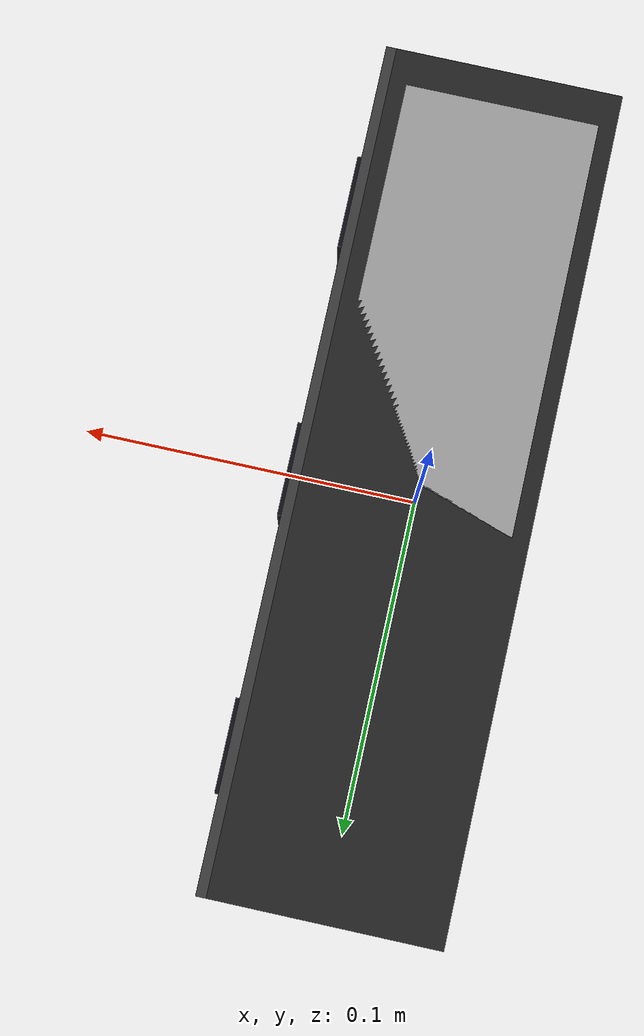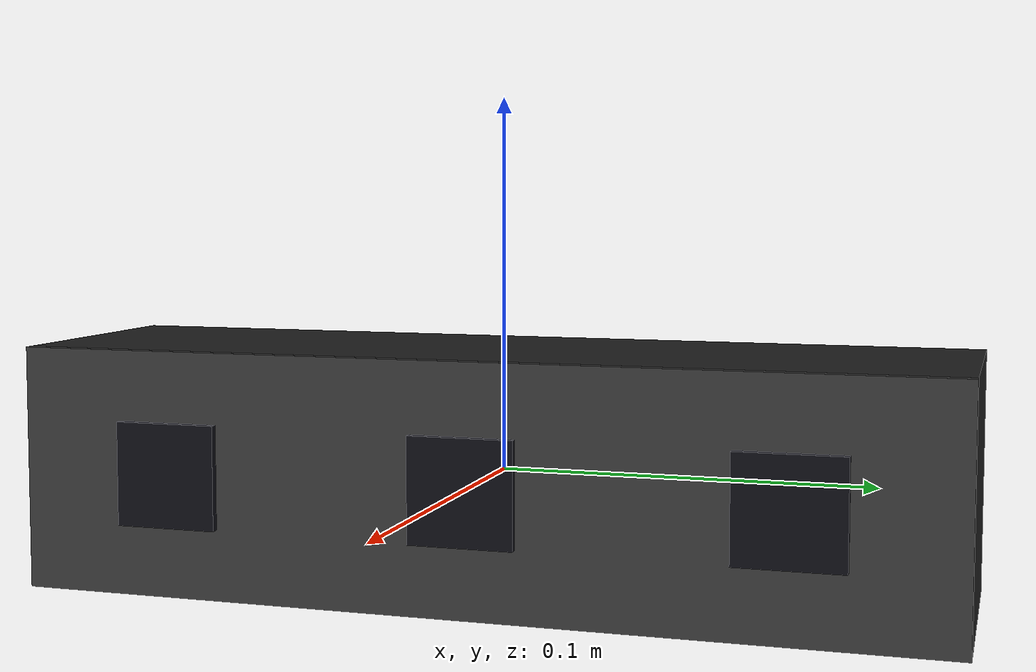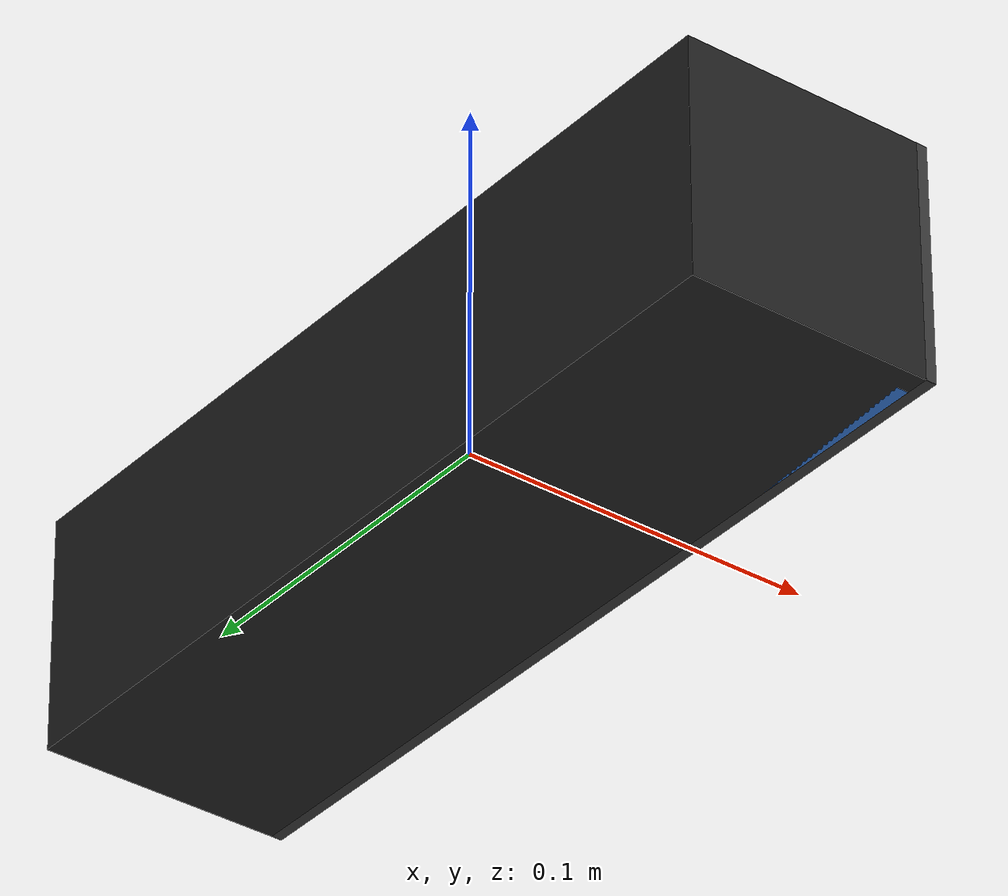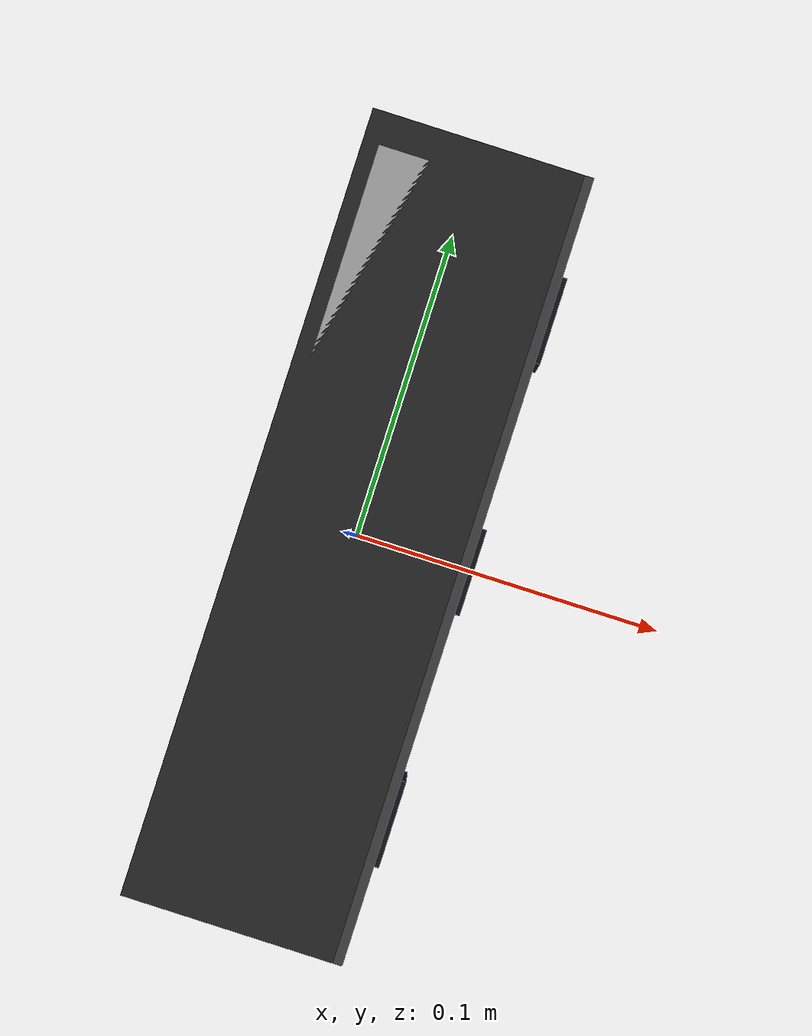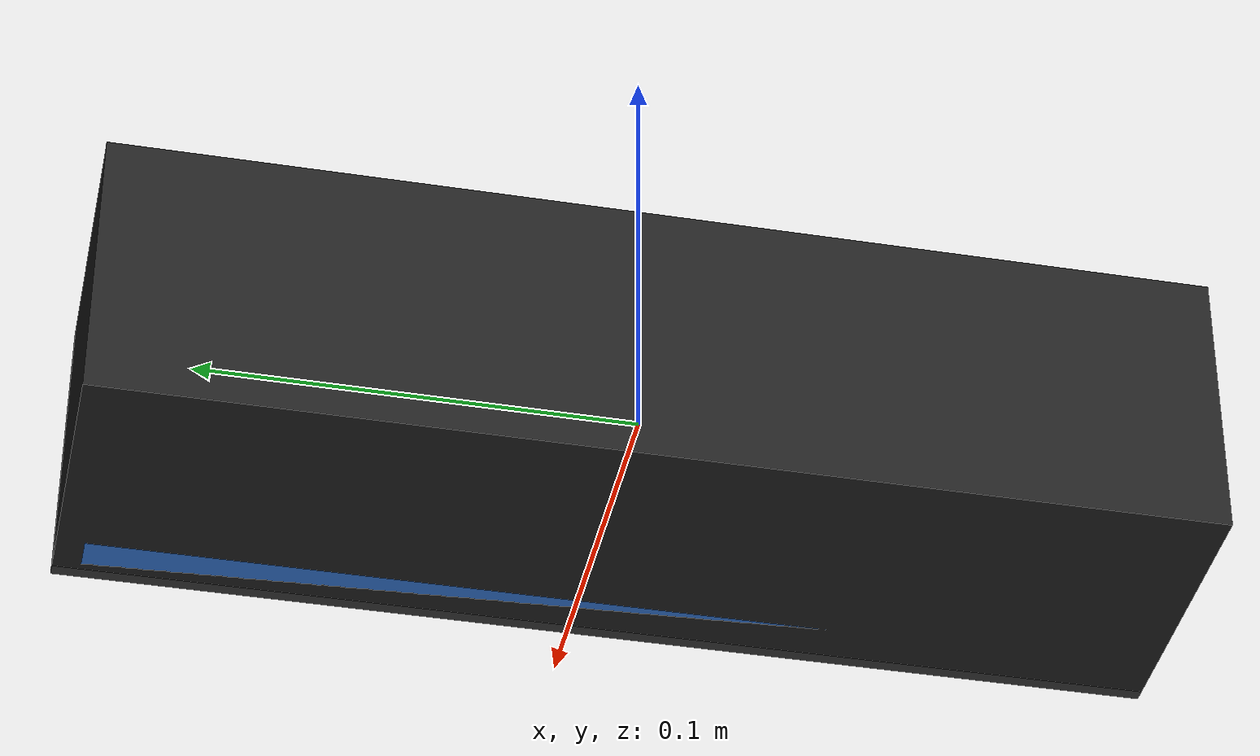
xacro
<?xml version="1.0"?>
<robot xmlns:xacro="http://www.ros.org/wiki/xacro" name="kinect2_cameras">

  <!--  Scene-level arguments                                          -->
  <!--  Injected by dual_kinect2_simple.launch.py from                -->
  <!--  multi_camera_config.yaml via xacro.process_file mappings.    -->

  <xacro:arg name="world_frame"  default="map"/>

  <!-- Camera 1 -->
  <xacro:arg name="cam1_frame"   default="kinect2_1_link"/>
  <xacro:arg name="cam1_x"       default="0.0"/>
  <xacro:arg name="cam1_y"       default="0.0"/>
  <xacro:arg name="cam1_z"       default="0.0"/>
  <xacro:arg name="cam1_roll"    default="0.0"/>
  <xacro:arg name="cam1_pitch"   default="0.0"/>
  <xacro:arg name="cam1_yaw"     default="0.0"/>

  <!-- Camera 2 -->
  <xacro:arg name="cam2_frame"   default="kinect2_2_link"/>
  <xacro:arg name="cam2_x"       default="0.0"/>
  <xacro:arg name="cam2_y"       default="0.0"/>
  <xacro:arg name="cam2_z"       default="0.0"/>
  <xacro:arg name="cam2_roll"    default="0.0"/>
  <xacro:arg name="cam2_pitch"   default="0.0"/>
  <xacro:arg name="cam2_yaw"     default="0.0"/>

  <!--  Physical constants (metres)                                    -->

  <xacro:property name="KV2_W"  value="0.249"/>  <!-- width  Y -->
  <xacro:property name="KV2_H"  value="0.066"/>  <!-- height Z -->
  <xacro:property name="KV2_D"  value="0.067"/>  <!-- depth  X -->

  <!-- Half-dimensions (used for face/stripe offsets) -->
  <xacro:property name="KV2_HW" value="${KV2_W/2}"/>
  <xacro:property name="KV2_HH" value="${KV2_H/2}"/>
  <xacro:property name="KV2_HD" value="${KV2_D/2}"/>

  <!-- Lens window size -->
  <xacro:property name="LENS_S" value="0.028"/>

  <!-- Face panel thickness -->
  <xacro:property name="FACE_T" value="0.003"/>

  <!-- Top stripe height -->
  <xacro:property name="STRIPE_H" value="0.008"/>

  <!-- Accent strip height -->
  <xacro:property name="ACCENT_H" value="0.006"/>

  <!--  Colour palette                                                 -->

  <xacro:property name="COL_BODY"   value="0.13 0.13 0.13 1.0"/>
  <xacro:property name="COL_FACE"   value="0.22 0.22 0.22 1.0"/>
  <xacro:property name="COL_LENS"   value="0.05 0.05 0.08 1.0"/>
  <xacro:property name="COL_STRIPE" value="0.60 0.60 0.60 1.0"/>

  <!--  Macro: kinect2_sensor                                          -->
  <!--  Parameters                                                     -->
  <!--    link_name   — URDF link name (= TF frame, e.g. kinect2_1_link) -->
  <!--    parent      — parent link name (= world_frame, e.g. map)    -->
  <!--    x y z       — translation from parent (metres)              -->
  <!--    roll pitch yaw — rotation from parent (radians)             -->
  <!--    acc_r acc_g acc_b — RGB accent colour (0–1 floats)          -->

  <xacro:macro name="kinect2_sensor"
               params="link_name parent
                       x y z roll pitch yaw
                       acc_r acc_g acc_b">

    <!-- Fixed joint: parent frame → sensor link -->
    <joint name="${parent}_to_${link_name}" type="fixed">
      <parent link="${parent}"/>
      <child  link="${link_name}"/>
      <origin xyz="${x} ${y} ${z}" rpy="${roll} ${pitch} ${yaw}"/>
    </joint>

    <link name="${link_name}">

      <!-- 1. Main body ─────────────────────────────────────────────── -->
      <visual name="${link_name}_body">
        <origin xyz="0 0 0" rpy="0 0 0"/>
        <geometry>
          <box size="${KV2_D} ${KV2_W} ${KV2_H}"/>
        </geometry>
        <material name="${link_name}_mat_body">
          <color rgba="${COL_BODY}"/>
        </material>
      </visual>

      <!-- 2. Front face panel (sits flush on +X face) ──────────────── -->
      <visual name="${link_name}_face">
        <origin xyz="${KV2_HD + FACE_T/2} 0 0" rpy="0 0 0"/>
        <geometry>
          <box size="${FACE_T} ${KV2_W} ${KV2_H}"/>
        </geometry>
        <material name="${link_name}_mat_face">
          <color rgba="${COL_FACE}"/>
        </material>
      </visual>

      <!-- 3. Top label stripe ─────────────────────────────────────── -->
      <visual name="${link_name}_stripe">
        <origin xyz="0 0 ${KV2_HH - STRIPE_H/2}" rpy="0 0 0"/>
        <geometry>
          <box size="${KV2_D * 0.85} ${KV2_W * 0.92} ${STRIPE_H}"/>
        </geometry>
        <material name="${link_name}_mat_stripe">
          <color rgba="${COL_STRIPE}"/>
        </material>
      </visual>

      <!-- 4. IR emitter window — left of centre (+Y side) ──────────── -->
      <visual name="${link_name}_ir">
        <origin xyz="${KV2_HD + FACE_T + 0.001} ${KV2_W * 0.33} 0" rpy="0 0 0"/>
        <geometry>
          <box size="0.002 ${LENS_S} ${LENS_S}"/>
        </geometry>
        <material name="${link_name}_mat_ir">
          <color rgba="${COL_LENS}"/>
        </material>
      </visual>

      <!-- 5. RGB camera window — centre ────────────────────────────── -->
      <visual name="${link_name}_rgb">
        <origin xyz="${KV2_HD + FACE_T + 0.001} 0 0" rpy="0 0 0"/>
        <geometry>
          <box size="0.002 ${LENS_S} ${LENS_S}"/>
        </geometry>
        <material name="${link_name}_mat_rgb">
          <color rgba="${COL_LENS}"/>
        </material>
      </visual>

      <!-- 6. Depth sensor window — right of centre (-Y side) ────────── -->
      <visual name="${link_name}_depth">
        <origin xyz="${KV2_HD + FACE_T + 0.001} ${-KV2_W * 0.33} 0" rpy="0 0 0"/>
        <geometry>
          <box size="0.002 ${LENS_S} ${LENS_S}"/>
        </geometry>
        <material name="${link_name}_mat_depth">
          <color rgba="${COL_LENS}"/>
        </material>
      </visual>

      <!-- 7. Accent strip — unique colour per camera ────────────────── -->
      <visual name="${link_name}_accent">
        <origin xyz="${KV2_HD - 0.005} 0 ${-(KV2_HH - ACCENT_H/2)}" rpy="0 0 0"/>
        <geometry>
          <box size="0.010 ${KV2_W * 0.95} ${ACCENT_H}"/>
        </geometry>
        <material name="${link_name}_mat_accent">
          <color rgba="${acc_r} ${acc_g} ${acc_b} 1.0"/>
        </material>
      </visual>

    </link>
  </xacro:macro>

  <!--  Scene: world anchor + camera instances                         -->

  <!-- World / map anchor link -->
  <link name="$(arg world_frame)"/>

  <!-- Camera 1 — blue accent -->
  <xacro:kinect2_sensor
    link_name="$(arg cam1_frame)"
    parent="$(arg world_frame)"
    x="$(arg cam1_x)"  y="$(arg cam1_y)"  z="$(arg cam1_z)"
    roll="$(arg cam1_roll)"  pitch="$(arg cam1_pitch)"  yaw="$(arg cam1_yaw)"
    acc_r="0.20"  acc_g="0.45"  acc_b="0.80"/>

  <!-- Camera 2 — orange accent -->
  <xacro:kinect2_sensor
    link_name="$(arg cam2_frame)"
    parent="$(arg world_frame)"
    x="$(arg cam2_x)"  y="$(arg cam2_y)"  z="$(arg cam2_z)"
    roll="$(arg cam2_roll)"  pitch="$(arg cam2_pitch)"  yaw="$(arg cam2_yaw)"
    acc_r="0.80"  acc_g="0.35"  acc_b="0.15"/>

</robot>
